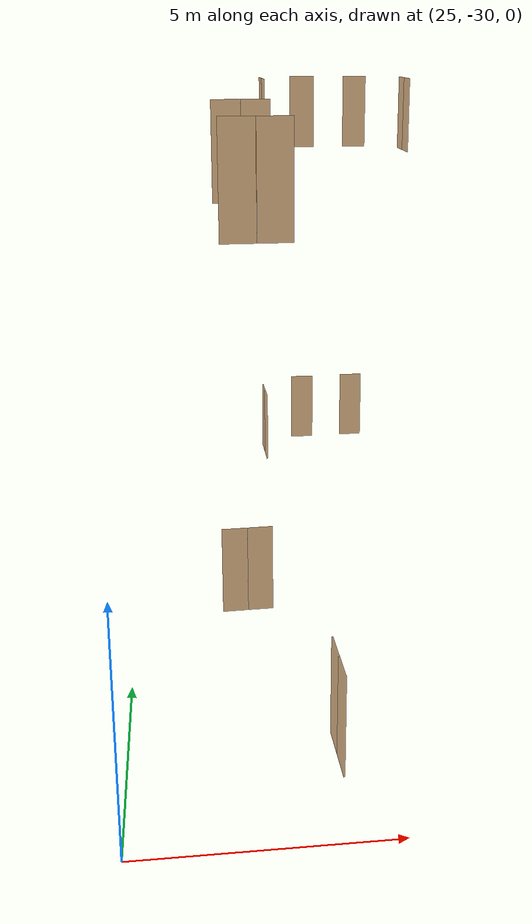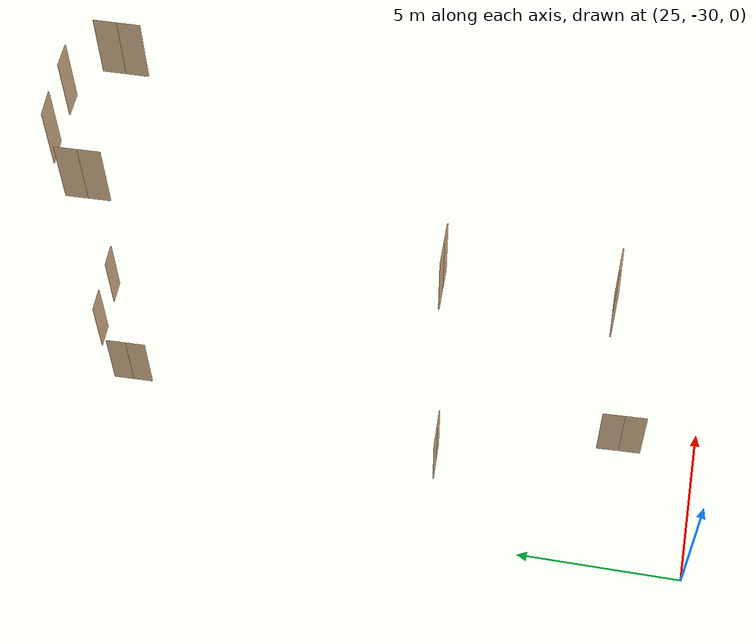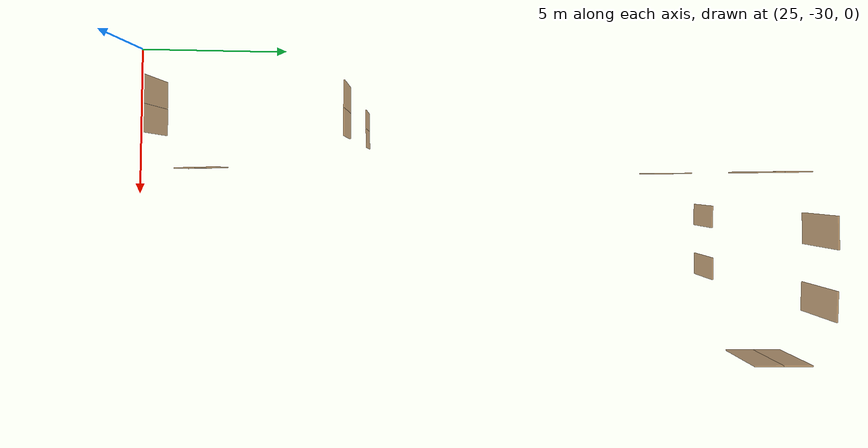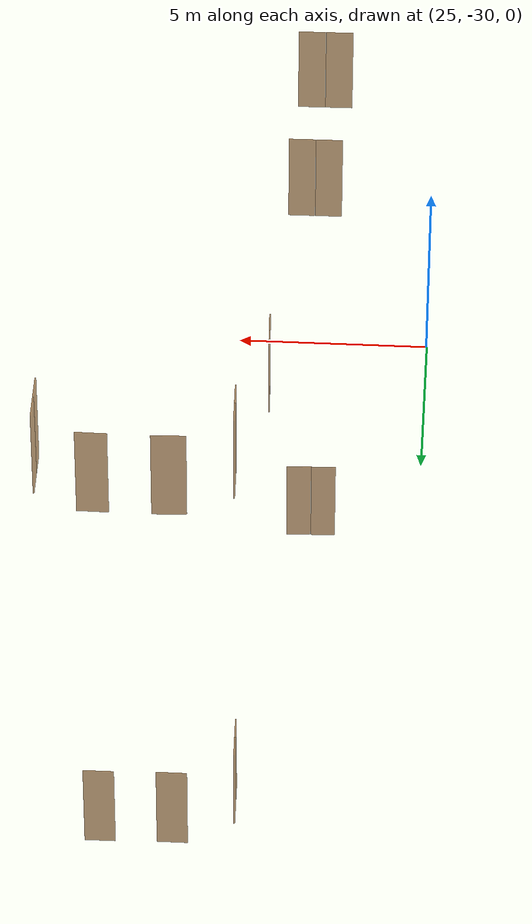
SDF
<sdf version="1.7">
 <world name="sim_world">
  <model name="door24">
   <pose>30.37290126329647 -10.758362565942143 0.0 0 0 3.141592653589793</pose>
   <link name="right">
    <pose>0 0 1.11 0 0 0</pose>
    <visual name="right_visual">
     <geometry><box><size>0.7199090851457741 0.03 2.2</size></box></geometry>
     <material>
      <ambient>0.5 0.25 0 0.6</ambient>
      <diffuse>0.5 0.25 0 0.6</diffuse>
      <pbr><metal><metalness>0.0</metalness></metal></pbr>
     </material>
    </visual>
    <collision name="right_collision">
     <geometry><box><size>0.7199090851457741 0.03 2.2</size></box></geometry>
     <surface><contact><collide_bitmask>0x02</collide_bitmask></contact></surface>
    </collision>
    <inertial>
     <mass>50.0</mass>
     <inertia><ixx>20.17041666666667</ixx><iyy>22.326121211980944</iyy><izz>2.163204545314273</izz></inertia>
    </inertial>
   </link>
   <joint name="right_joint" type="revolute">
    <parent>world</parent>
    <child>right</child>
    <axis><xyz>0 0 1</xyz><limit><lower>0</lower><upper>1.57</upper></limit></axis>
    <pose>0.36495454257288706 0 0 0 0 0</pose>
   </joint>
   <plugin name="register_component" filename="libregister_component.so">
    <component name="Door">
     <v_max_door>0.5</v_max_door>
     <a_max_door>0.3</a_max_door>
     <a_nom_door>0.15</a_nom_door>
     <dx_min_door>0.01</dx_min_door>
     <f_max_door>500.0</f_max_door>
     <ros_interface>true</ros_interface>
     <door name="door24" type="SwingDoor" left_joint_name="empty_joint" right_joint_name="right_joint"/>
    </component>
   </plugin>
  </model>
  <model name="door25">
   <pose>32.063772293609546 -10.714148925956838 0.0 0 0 -3.136152313331386</pose>
   <link name="right">
    <pose>0 0 1.11 0 0 0</pose>
    <visual name="right_visual">
     <geometry><box><size>0.719861919994674 0.03 2.2</size></box></geometry>
     <material>
      <ambient>0.5 0.25 0 0.6</ambient>
      <diffuse>0.5 0.25 0 0.6</diffuse>
      <pbr><metal><metalness>0.0</metalness></metal></pbr>
     </material>
    </visual>
    <collision name="right_collision">
     <geometry><box><size>0.719861919994674 0.03 2.2</size></box></geometry>
     <surface><contact><collide_bitmask>0x02</collide_bitmask></contact></surface>
    </collision>
    <inertial>
     <mass>50.0</mass>
     <inertia><ixx>20.17041666666667</ixx><iyy>22.325838266076747</iyy><izz>2.162921599410077</izz></inertia>
    </inertial>
   </link>
   <joint name="right_joint" type="revolute">
    <parent>world</parent>
    <child>right</child>
    <axis><xyz>0 0 -1</xyz><limit><lower>0</lower><upper>1.57</upper></limit></axis>
    <pose>0.364930959997337 0 0 0 0 0</pose>
   </joint>
   <plugin name="register_component" filename="libregister_component.so">
    <component name="Door">
     <v_max_door>0.5</v_max_door>
     <a_max_door>0.3</a_max_door>
     <a_nom_door>0.15</a_nom_door>
     <dx_min_door>0.01</dx_min_door>
     <f_max_door>500.0</f_max_door>
     <ros_interface>true</ros_interface>
     <door name="door25" type="SwingDoor" left_joint_name="empty_joint" right_joint_name="right_joint"/>
    </component>
   </plugin>
  </model>
  <model name="door26">
   <pose>28.98413503559683 -12.066034224858509 0.0 0 0 1.599630185866512</pose>
   <link name="right">
    <pose>0.30787722562131326 0 1.11 0 0 0</pose>
    <visual name="right_visual">
     <geometry><box><size>0.6057544512426265 0.03 2.2</size></box></geometry>
     <material>
      <ambient>0.5 0.25 0 0.6</ambient>
      <diffuse>0.5 0.25 0 0.6</diffuse>
      <pbr><metal><metalness>0.0</metalness></metal></pbr>
     </material>
    </visual>
    <collision name="right_collision">
     <geometry><box><size>0.6057544512426265 0.03 2.2</size></box></geometry>
     <surface><contact><collide_bitmask>0x02</collide_bitmask></contact></surface>
    </collision>
    <inertial>
     <mass>50.0</mass>
     <inertia><ixx>20.17041666666667</ixx><iyy>21.695576896667735</iyy><izz>1.532660230001065</izz></inertia>
    </inertial>
   </link>
   <joint name="right_joint" type="revolute">
    <parent>world</parent>
    <child>right</child>
    <axis><xyz>0 0 1</xyz><limit><lower>0</lower><upper>1.57</upper></limit></axis>
    <pose>0.30787722562131326 0 0 0 0 0</pose>
   </joint>
   <link name="left">
    <pose>-0.30787722562131326 0 1.11 0 0 0</pose>
    <visual name="left_visual">
     <geometry><box><size>0.6057544512426265 0.03 2.2</size></box></geometry>
     <material>
      <ambient>0.5 0.25 0 0.6</ambient>
      <diffuse>0.5 0.25 0 0.6</diffuse>
      <pbr><metal><metalness>0.0</metalness></metal></pbr>
     </material>
    </visual>
    <collision name="left_collision">
     <geometry><box><size>0.6057544512426265 0.03 2.2</size></box></geometry>
     <surface><contact><collide_bitmask>0x02</collide_bitmask></contact></surface>
    </collision>
    <inertial>
     <mass>50.0</mass>
     <inertia><ixx>20.17041666666667</ixx><iyy>21.695576896667735</iyy><izz>1.532660230001065</izz></inertia>
    </inertial>
   </link>
   <joint name="left_joint" type="revolute">
    <parent>world</parent>
    <child>left</child>
    <axis><xyz>0 0 1</xyz><limit><lower>-1.57</lower><upper>0</upper></limit></axis>
    <pose>-0.30787722562131326 0 0 0 0 0</pose>
   </joint>
   <plugin name="register_component" filename="libregister_component.so">
    <component name="Door">
     <v_max_door>0.5</v_max_door>
     <a_max_door>0.3</a_max_door>
     <a_nom_door>0.15</a_nom_door>
     <dx_min_door>0.01</dx_min_door>
     <f_max_door>500.0</f_max_door>
     <ros_interface>true</ros_interface>
     <door name="door26" type="DoubleSwingDoor" left_joint_name="left_joint" right_joint_name="right_joint"/>
    </component>
   </plugin>
  </model>
  <model name="door28">
   <pose>27.71038803456496 -22.081068554351567 0.0 0 0 -3.1111233363854818</pose>
   <link name="right">
    <pose>0.30752970420335624 0 1.11 0 0 0</pose>
    <visual name="right_visual">
     <geometry><box><size>0.6050594084067125 0.03 2.2</size></box></geometry>
     <material>
      <ambient>0.5 0.25 0 0.6</ambient>
      <diffuse>0.5 0.25 0 0.6</diffuse>
      <pbr><metal><metalness>0.0</metalness></metal></pbr>
     </material>
    </visual>
    <collision name="right_collision">
     <geometry><box><size>0.6050594084067125 0.03 2.2</size></box></geometry>
     <surface><contact><collide_bitmask>0x02</collide_bitmask></contact></surface>
    </collision>
    <inertial>
     <mass>50.0</mass>
     <inertia><ixx>20.17041666666667</ixx><iyy>21.692070365422843</iyy><izz>1.5291536987561705</izz></inertia>
    </inertial>
   </link>
   <joint name="right_joint" type="revolute">
    <parent>world</parent>
    <child>right</child>
    <axis><xyz>0 0 -1</xyz><limit><lower>0</lower><upper>1.57</upper></limit></axis>
    <pose>0.30752970420335624 0 0 0 0 0</pose>
   </joint>
   <link name="left">
    <pose>-0.30752970420335624 0 1.11 0 0 0</pose>
    <visual name="left_visual">
     <geometry><box><size>0.6050594084067125 0.03 2.2</size></box></geometry>
     <material>
      <ambient>0.5 0.25 0 0.6</ambient>
      <diffuse>0.5 0.25 0 0.6</diffuse>
      <pbr><metal><metalness>0.0</metalness></metal></pbr>
     </material>
    </visual>
    <collision name="left_collision">
     <geometry><box><size>0.6050594084067125 0.03 2.2</size></box></geometry>
     <surface><contact><collide_bitmask>0x02</collide_bitmask></contact></surface>
    </collision>
    <inertial>
     <mass>50.0</mass>
     <inertia><ixx>20.17041666666667</ixx><iyy>21.692070365422843</iyy><izz>1.5291536987561705</izz></inertia>
    </inertial>
   </link>
   <joint name="left_joint" type="revolute">
    <parent>world</parent>
    <child>left</child>
    <axis><xyz>0 0 -1</xyz><limit><lower>-1.57</lower><upper>0</upper></limit></axis>
    <pose>-0.30752970420335624 0 0 0 0 0</pose>
   </joint>
   <plugin name="register_component" filename="libregister_component.so">
    <component name="Door">
     <v_max_door>0.5</v_max_door>
     <a_max_door>0.3</a_max_door>
     <a_nom_door>0.15</a_nom_door>
     <dx_min_door>0.01</dx_min_door>
     <f_max_door>500.0</f_max_door>
     <ros_interface>true</ros_interface>
     <door name="door28" type="DoubleSwingDoor" left_joint_name="left_joint" right_joint_name="right_joint"/>
    </component>
   </plugin>
  </model>
  <model name="door30">
   <pose>29.077387993087957 -27.64226337983834 0.0 0 0 1.6121950248561212</pose>
   <link name="right">
    <pose>0.34384516931874454 0 1.11 0 0 0</pose>
    <visual name="right_visual">
     <geometry><box><size>0.6776903386374891 0.03 2.2</size></box></geometry>
     <material>
      <ambient>0.5 0.25 0 0.6</ambient>
      <diffuse>0.5 0.25 0 0.6</diffuse>
      <pbr><metal><metalness>0.0</metalness></metal></pbr>
     </material>
    </visual>
    <collision name="right_collision">
     <geometry><box><size>0.6776903386374891 0.03 2.2</size></box></geometry>
     <surface><contact><collide_bitmask>0x02</collide_bitmask></contact></surface>
    </collision>
    <inertial>
     <mass>50.0</mass>
     <inertia><ixx>20.17041666666667</ixx><iyy>22.080267479510816</iyy><izz>1.9173508128441443</izz></inertia>
    </inertial>
   </link>
   <joint name="right_joint" type="revolute">
    <parent>world</parent>
    <child>right</child>
    <axis><xyz>0 0 1</xyz><limit><lower>0</lower><upper>1.57</upper></limit></axis>
    <pose>0.34384516931874454 0 0 0 0 0</pose>
   </joint>
   <link name="left">
    <pose>-0.34384516931874454 0 1.11 0 0 0</pose>
    <visual name="left_visual">
     <geometry><box><size>0.6776903386374891 0.03 2.2</size></box></geometry>
     <material>
      <ambient>0.5 0.25 0 0.6</ambient>
      <diffuse>0.5 0.25 0 0.6</diffuse>
      <pbr><metal><metalness>0.0</metalness></metal></pbr>
     </material>
    </visual>
    <collision name="left_collision">
     <geometry><box><size>0.6776903386374891 0.03 2.2</size></box></geometry>
     <surface><contact><collide_bitmask>0x02</collide_bitmask></contact></surface>
    </collision>
    <inertial>
     <mass>50.0</mass>
     <inertia><ixx>20.17041666666667</ixx><iyy>22.080267479510816</iyy><izz>1.9173508128441443</izz></inertia>
    </inertial>
   </link>
   <joint name="left_joint" type="revolute">
    <parent>world</parent>
    <child>left</child>
    <axis><xyz>0 0 1</xyz><limit><lower>-1.57</lower><upper>0</upper></limit></axis>
    <pose>-0.34384516931874454 0 0 0 0 0</pose>
   </joint>
   <plugin name="register_component" filename="libregister_component.so">
    <component name="Door">
     <v_max_door>0.5</v_max_door>
     <a_max_door>0.3</a_max_door>
     <a_nom_door>0.15</a_nom_door>
     <dx_min_door>0.01</dx_min_door>
     <f_max_door>500.0</f_max_door>
     <ros_interface>true</ros_interface>
     <door name="door30" type="DoubleSwingDoor" left_joint_name="left_joint" right_joint_name="right_joint"/>
    </component>
   </plugin>
  </model>
  <model name="N1_door17">
   <pose>30.332936386621526 -10.766380634661903 10.0 0 0 -3.108248816697608</pose>
   <link name="right">
    <pose>0 0 1.11 0 0 0</pose>
    <visual name="right_visual">
     <geometry><box><size>0.7785833608534494 0.03 2.2</size></box></geometry>
     <material>
      <ambient>0.5 0.25 0 0.6</ambient>
      <diffuse>0.5 0.25 0 0.6</diffuse>
      <pbr><metal><metalness>0.0</metalness></metal></pbr>
     </material>
    </visual>
    <collision name="right_collision">
     <geometry><box><size>0.7785833608534494 0.03 2.2</size></box></geometry>
     <surface><contact><collide_bitmask>0x02</collide_bitmask></contact></surface>
    </collision>
    <inertial>
     <mass>50.0</mass>
     <inertia><ixx>20.17041666666667</ixx><iyy>22.692466874157724</iyy><izz>2.5295502074910527</izz></inertia>
    </inertial>
   </link>
   <joint name="right_joint" type="revolute">
    <parent>world</parent>
    <child>right</child>
    <axis><xyz>0 0 1</xyz><limit><lower>0</lower><upper>1.57</upper></limit></axis>
    <pose>0.3942916804267247 0 0 0 0 0</pose>
   </joint>
   <plugin name="register_component" filename="libregister_component.so">
    <component name="Door">
     <v_max_door>0.5</v_max_door>
     <a_max_door>0.3</a_max_door>
     <a_nom_door>0.15</a_nom_door>
     <dx_min_door>0.01</dx_min_door>
     <f_max_door>500.0</f_max_door>
     <ros_interface>true</ros_interface>
     <door name="N1_door17" type="SwingDoor" left_joint_name="empty_joint" right_joint_name="right_joint"/>
    </component>
   </plugin>
  </model>
  <model name="N1_door18">
   <pose>32.02164058884907 -10.762366272390462 10.0 0 0 3.1252456193026097</pose>
   <link name="right">
    <pose>0 0 1.11 0 0 0</pose>
    <visual name="right_visual">
     <geometry><box><size>0.7152176698242874 0.03 2.2</size></box></geometry>
     <material>
      <ambient>0.5 0.25 0 0.6</ambient>
      <diffuse>0.5 0.25 0 0.6</diffuse>
      <pbr><metal><metalness>0.0</metalness></metal></pbr>
     </material>
    </visual>
    <collision name="right_collision">
     <geometry><box><size>0.7152176698242874 0.03 2.2</size></box></geometry>
     <surface><contact><collide_bitmask>0x02</collide_bitmask></contact></surface>
    </collision>
    <inertial>
     <mass>50.0</mass>
     <inertia><ixx>20.17041666666667</ixx><iyy>22.29806798012035</iyy><izz>2.135151313453681</izz></inertia>
    </inertial>
   </link>
   <joint name="right_joint" type="revolute">
    <parent>world</parent>
    <child>right</child>
    <axis><xyz>0 0 -1</xyz><limit><lower>0</lower><upper>1.57</upper></limit></axis>
    <pose>0.3626088349121437 0 0 0 0 0</pose>
   </joint>
   <plugin name="register_component" filename="libregister_component.so">
    <component name="Door">
     <v_max_door>0.5</v_max_door>
     <a_max_door>0.3</a_max_door>
     <a_nom_door>0.15</a_nom_door>
     <dx_min_door>0.01</dx_min_door>
     <f_max_door>500.0</f_max_door>
     <ros_interface>true</ros_interface>
     <door name="N1_door18" type="SwingDoor" left_joint_name="empty_joint" right_joint_name="right_joint"/>
    </component>
   </plugin>
  </model>
  <model name="N1_door19">
   <pose>28.964532534399893 -12.01461202186986 10.0 0 0 1.6022838597441502</pose>
   <link name="right">
    <pose>0.3194181875019884 0 1.11 0 0 0</pose>
    <visual name="right_visual">
     <geometry><box><size>0.6288363750039768 0.03 2.2</size></box></geometry>
     <material>
      <ambient>0.5 0.25 0 0.6</ambient>
      <diffuse>0.5 0.25 0 0.6</diffuse>
      <pbr><metal><metalness>0.0</metalness></metal></pbr>
     </material>
    </visual>
    <collision name="right_collision">
     <geometry><box><size>0.6288363750039768 0.03 2.2</size></box></geometry>
     <surface><contact><collide_bitmask>0x02</collide_bitmask></contact></surface>
    </collision>
    <inertial>
     <mass>50.0</mass>
     <inertia><ixx>20.17041666666667</ixx><iyy>21.814313277200597</iyy><izz>1.651396610533926</izz></inertia>
    </inertial>
   </link>
   <joint name="right_joint" type="revolute">
    <parent>world</parent>
    <child>right</child>
    <axis><xyz>0 0 1</xyz><limit><lower>0</lower><upper>1.57</upper></limit></axis>
    <pose>0.3194181875019884 0 0 0 0 0</pose>
   </joint>
   <link name="left">
    <pose>-0.3194181875019884 0 1.11 0 0 0</pose>
    <visual name="left_visual">
     <geometry><box><size>0.6288363750039768 0.03 2.2</size></box></geometry>
     <material>
      <ambient>0.5 0.25 0 0.6</ambient>
      <diffuse>0.5 0.25 0 0.6</diffuse>
      <pbr><metal><metalness>0.0</metalness></metal></pbr>
     </material>
    </visual>
    <collision name="left_collision">
     <geometry><box><size>0.6288363750039768 0.03 2.2</size></box></geometry>
     <surface><contact><collide_bitmask>0x02</collide_bitmask></contact></surface>
    </collision>
    <inertial>
     <mass>50.0</mass>
     <inertia><ixx>20.17041666666667</ixx><iyy>21.814313277200597</iyy><izz>1.651396610533926</izz></inertia>
    </inertial>
   </link>
   <joint name="left_joint" type="revolute">
    <parent>world</parent>
    <child>left</child>
    <axis><xyz>0 0 1</xyz><limit><lower>-1.57</lower><upper>0</upper></limit></axis>
    <pose>-0.3194181875019884 0 0 0 0 0</pose>
   </joint>
   <plugin name="register_component" filename="libregister_component.so">
    <component name="Door">
     <v_max_door>0.5</v_max_door>
     <a_max_door>0.3</a_max_door>
     <a_nom_door>0.15</a_nom_door>
     <dx_min_door>0.01</dx_min_door>
     <f_max_door>500.0</f_max_door>
     <ros_interface>true</ros_interface>
     <door name="N1_door19" type="DoubleSwingDoor" left_joint_name="left_joint" right_joint_name="right_joint"/>
    </component>
   </plugin>
  </model>
  <model name="N1_door20">
   <pose>33.3910146342492 -11.954818514076322 10.0 0 0 1.5908324618208738</pose>
   <link name="right">
    <pose>0.3361912140977299 0 1.11 0 0 0</pose>
    <visual name="right_visual">
     <geometry><box><size>0.6623824281954598 0.03 2.2</size></box></geometry>
     <material>
      <ambient>0.5 0.25 0 0.6</ambient>
      <diffuse>0.5 0.25 0 0.6</diffuse>
      <pbr><metal><metalness>0.0</metalness></metal></pbr>
     </material>
    </visual>
    <collision name="right_collision">
     <geometry><box><size>0.6623824281954598 0.03 2.2</size></box></geometry>
     <surface><contact><collide_bitmask>0x02</collide_bitmask></contact></surface>
    </collision>
    <inertial>
     <mass>50.0</mass>
     <inertia><ixx>20.17041666666667</ixx><iyy>21.994793671592145</iyy><izz>1.831877004925473</izz></inertia>
    </inertial>
   </link>
   <joint name="right_joint" type="revolute">
    <parent>world</parent>
    <child>right</child>
    <axis><xyz>0 0 -1</xyz><limit><lower>0</lower><upper>1.57</upper></limit></axis>
    <pose>0.3361912140977299 0 0 0 0 0</pose>
   </joint>
   <link name="left">
    <pose>-0.3361912140977299 0 1.11 0 0 0</pose>
    <visual name="left_visual">
     <geometry><box><size>0.6623824281954598 0.03 2.2</size></box></geometry>
     <material>
      <ambient>0.5 0.25 0 0.6</ambient>
      <diffuse>0.5 0.25 0 0.6</diffuse>
      <pbr><metal><metalness>0.0</metalness></metal></pbr>
     </material>
    </visual>
    <collision name="left_collision">
     <geometry><box><size>0.6623824281954598 0.03 2.2</size></box></geometry>
     <surface><contact><collide_bitmask>0x02</collide_bitmask></contact></surface>
    </collision>
    <inertial>
     <mass>50.0</mass>
     <inertia><ixx>20.17041666666667</ixx><iyy>21.994793671592145</iyy><izz>1.831877004925473</izz></inertia>
    </inertial>
   </link>
   <joint name="left_joint" type="revolute">
    <parent>world</parent>
    <child>left</child>
    <axis><xyz>0 0 -1</xyz><limit><lower>-1.57</lower><upper>0</upper></limit></axis>
    <pose>-0.3361912140977299 0 0 0 0 0</pose>
   </joint>
   <plugin name="register_component" filename="libregister_component.so">
    <component name="Door">
     <v_max_door>0.5</v_max_door>
     <a_max_door>0.3</a_max_door>
     <a_nom_door>0.15</a_nom_door>
     <dx_min_door>0.01</dx_min_door>
     <f_max_door>500.0</f_max_door>
     <ros_interface>true</ros_interface>
     <door name="N1_door20" type="DoubleSwingDoor" left_joint_name="left_joint" right_joint_name="right_joint"/>
    </component>
   </plugin>
  </model>
  <model name="N1_door21">
   <pose>27.68916451550482 -22.084787710407113 10.0 0 0 -3.1315588302840696</pose>
   <link name="right">
    <pose>0.3203842667636665 0 1.11 0 0 0</pose>
    <visual name="right_visual">
     <geometry><box><size>0.630768533527333 0.03 2.2</size></box></geometry>
     <material>
      <ambient>0.5 0.25 0 0.6</ambient>
      <diffuse>0.5 0.25 0 0.6</diffuse>
      <pbr><metal><metalness>0.0</metalness></metal></pbr>
     </material>
    </visual>
    <collision name="right_collision">
     <geometry><box><size>0.630768533527333 0.03 2.2</size></box></geometry>
     <surface><contact><collide_bitmask>0x02</collide_bitmask></contact></surface>
    </collision>
    <inertial>
     <mass>50.0</mass>
     <inertia><ixx>20.17041666666667</ixx><iyy>21.824453928700933</iyy><izz>1.6615372620342592</izz></inertia>
    </inertial>
   </link>
   <joint name="right_joint" type="revolute">
    <parent>world</parent>
    <child>right</child>
    <axis><xyz>0 0 -1</xyz><limit><lower>0</lower><upper>1.57</upper></limit></axis>
    <pose>0.3203842667636665 0 0 0 0 0</pose>
   </joint>
   <link name="left">
    <pose>-0.3203842667636665 0 1.11 0 0 0</pose>
    <visual name="left_visual">
     <geometry><box><size>0.630768533527333 0.03 2.2</size></box></geometry>
     <material>
      <ambient>0.5 0.25 0 0.6</ambient>
      <diffuse>0.5 0.25 0 0.6</diffuse>
      <pbr><metal><metalness>0.0</metalness></metal></pbr>
     </material>
    </visual>
    <collision name="left_collision">
     <geometry><box><size>0.630768533527333 0.03 2.2</size></box></geometry>
     <surface><contact><collide_bitmask>0x02</collide_bitmask></contact></surface>
    </collision>
    <inertial>
     <mass>50.0</mass>
     <inertia><ixx>20.17041666666667</ixx><iyy>21.824453928700933</iyy><izz>1.6615372620342592</izz></inertia>
    </inertial>
   </link>
   <joint name="left_joint" type="revolute">
    <parent>world</parent>
    <child>left</child>
    <axis><xyz>0 0 -1</xyz><limit><lower>-1.57</lower><upper>0</upper></limit></axis>
    <pose>-0.3203842667636665 0 0 0 0 0</pose>
   </joint>
   <plugin name="register_component" filename="libregister_component.so">
    <component name="Door">
     <v_max_door>0.5</v_max_door>
     <a_max_door>0.3</a_max_door>
     <a_nom_door>0.15</a_nom_door>
     <dx_min_door>0.01</dx_min_door>
     <f_max_door>500.0</f_max_door>
     <ros_interface>true</ros_interface>
     <door name="N1_door21" type="DoubleSwingDoor" left_joint_name="left_joint" right_joint_name="right_joint"/>
    </component>
   </plugin>
  </model>
  <model name="N1_door23">
   <pose>27.66559047091869 -26.64964058733704 10.0 0 0 -3.1280500448916233</pose>
   <link name="right">
    <pose>0.3352266684740085 0 1.11 0 0 0</pose>
    <visual name="right_visual">
     <geometry><box><size>0.660453336948017 0.03 2.2</size></box></geometry>
     <material>
      <ambient>0.5 0.25 0 0.6</ambient>
      <diffuse>0.5 0.25 0 0.6</diffuse>
      <pbr><metal><metalness>0.0</metalness></metal></pbr>
     </material>
    </visual>
    <collision name="right_collision">
     <geometry><box><size>0.660453336948017 0.03 2.2</size></box></geometry>
     <surface><contact><collide_bitmask>0x02</collide_bitmask></contact></surface>
    </collision>
    <inertial>
     <mass>50.0</mass>
     <inertia><ixx>20.17041666666667</ixx><iyy>21.984160876190714</iyy><izz>1.8212442095240455</izz></inertia>
    </inertial>
   </link>
   <joint name="right_joint" type="revolute">
    <parent>world</parent>
    <child>right</child>
    <axis><xyz>0 0 1</xyz><limit><lower>0</lower><upper>1.57</upper></limit></axis>
    <pose>0.3352266684740085 0 0 0 0 0</pose>
   </joint>
   <link name="left">
    <pose>-0.3352266684740085 0 1.11 0 0 0</pose>
    <visual name="left_visual">
     <geometry><box><size>0.660453336948017 0.03 2.2</size></box></geometry>
     <material>
      <ambient>0.5 0.25 0 0.6</ambient>
      <diffuse>0.5 0.25 0 0.6</diffuse>
      <pbr><metal><metalness>0.0</metalness></metal></pbr>
     </material>
    </visual>
    <collision name="left_collision">
     <geometry><box><size>0.660453336948017 0.03 2.2</size></box></geometry>
     <surface><contact><collide_bitmask>0x02</collide_bitmask></contact></surface>
    </collision>
    <inertial>
     <mass>50.0</mass>
     <inertia><ixx>20.17041666666667</ixx><iyy>21.984160876190714</iyy><izz>1.8212442095240455</izz></inertia>
    </inertial>
   </link>
   <joint name="left_joint" type="revolute">
    <parent>world</parent>
    <child>left</child>
    <axis><xyz>0 0 1</xyz><limit><lower>-1.57</lower><upper>0</upper></limit></axis>
    <pose>-0.3352266684740085 0 0 0 0 0</pose>
   </joint>
   <plugin name="register_component" filename="libregister_component.so">
    <component name="Door">
     <v_max_door>0.5</v_max_door>
     <a_max_door>0.3</a_max_door>
     <a_nom_door>0.15</a_nom_door>
     <dx_min_door>0.01</dx_min_door>
     <f_max_door>500.0</f_max_door>
     <ros_interface>true</ros_interface>
     <door name="N1_door23" type="DoubleSwingDoor" left_joint_name="left_joint" right_joint_name="right_joint"/>
    </component>
   </plugin>
  </model>
 </world>
</sdf>
